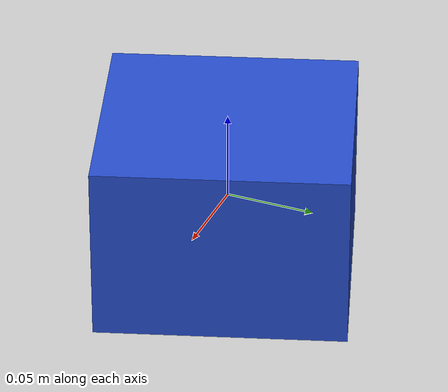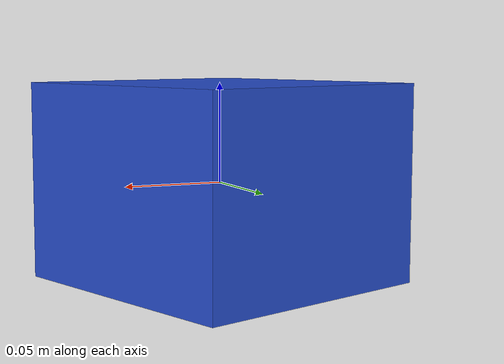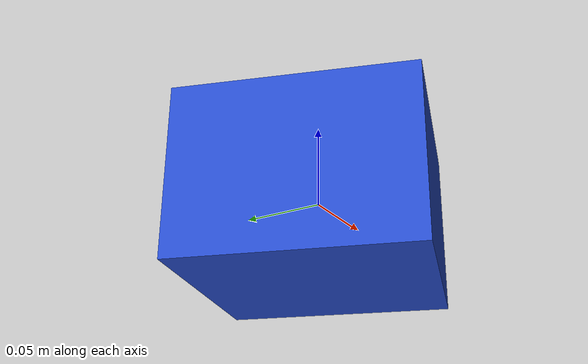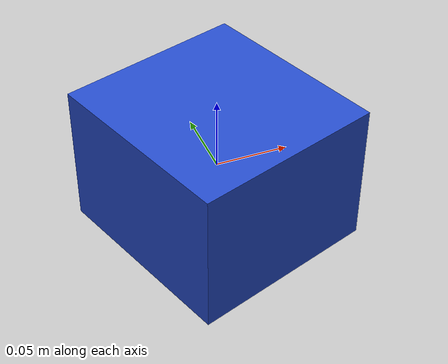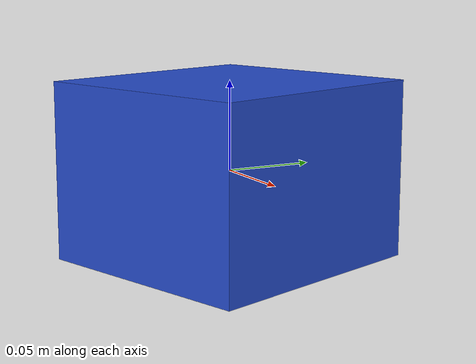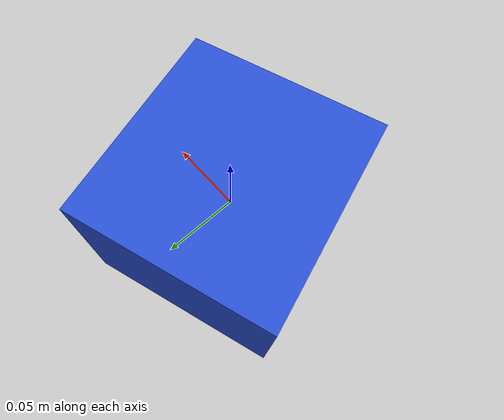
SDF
<sdf version="1.6"><model name="model_12"><static>true</static><link name="link"><pose>0 0 0 0 0 0.3247425017714758</pose><collision name="collision"><geometry><box><size>0.13206455224127278 0.13867750974077148 0.1</size></box></geometry></collision><visual name="visual"><geometry><box><size>0.13206455224127278 0.13867750974077148 0.1</size></box></geometry><material><script><name>Gazebo/Blue</name><uri>file://media/materials/scripts/gazebo.material</uri></script></material></visual></link></model></sdf>
